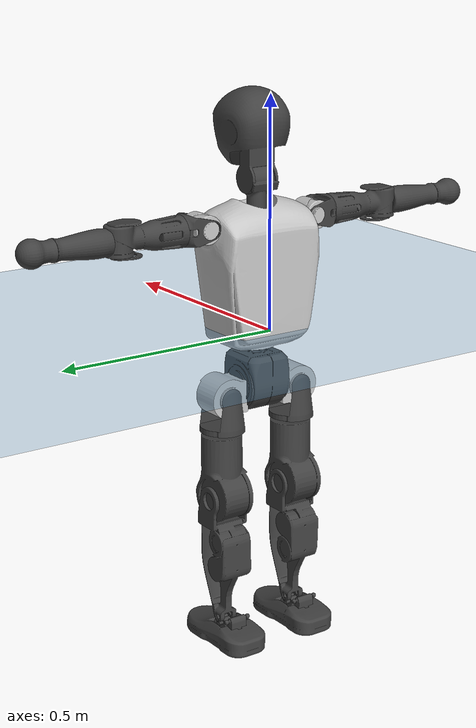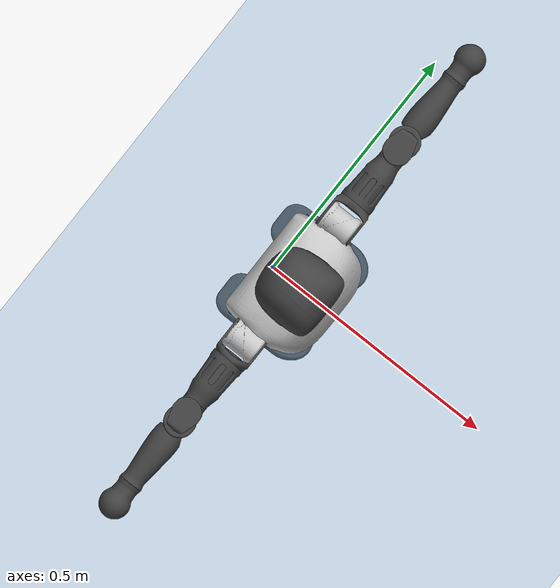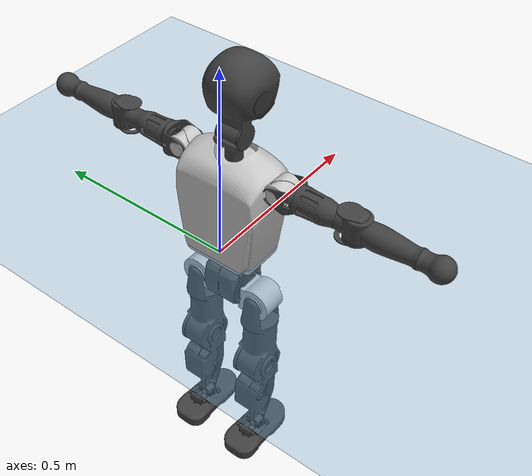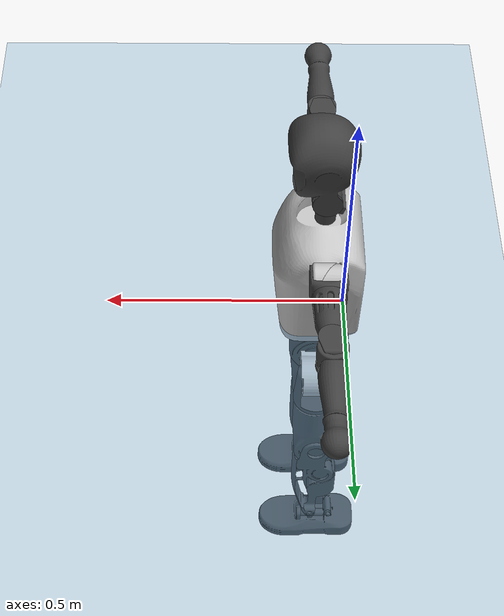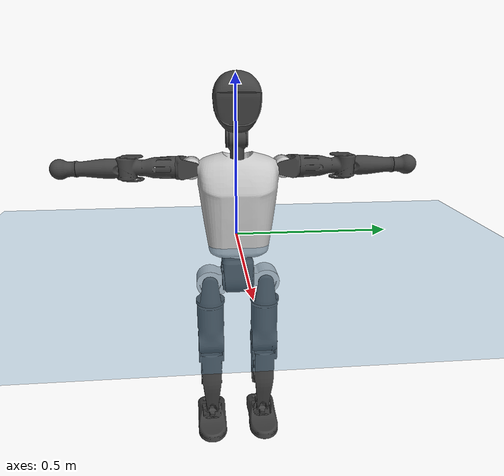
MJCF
<mujoco model="T1">
  <compiler angle="radian" assetdir="assets" balanceinertia="true" inertiafromgeom="false"/>

  <option timestep="0.005" density="1.2" viscosity="2e-05"/>

  <size nkey="1"/>

  <visual>
    <quality shadowsize="8192"/>
    <map shadowclip="0.5"/>
  </visual>

  <default>
    <default class="/">
      <joint armature="0.01" damping="0.01" frictionloss="0.1"/>
      <geom contype="0" conaffinity="0" group="1" solref="-1000 -80"/>
      <site size="0.01 0.005 0.005" group="5"/>
      <general forcelimited="true" biastype="affine" gainprm="25" biasprm="0 -25 -0.6"/>
      <default class="t1">
        <geom rgba="0.25 0.25 0.25 1"/>
        <default class="visual">
          <geom type="mesh" group="2"/>
        </default>
        <default class="collision">
          <geom group="3"/>
        </default>
        <default class="foot">
          <geom size="0.1115 0.05 0.015" type="box" condim="6" group="4" priority="1" solimp="0.015 1 0.015"/>
        </default>
        <default class="reward_collision_sphere">
          <geom group="5" rgba="1 0 0 1"/>
        </default>
      </default>
    </default>
  </default>

  <asset>
    <texture type="skybox" colorspace="auto" name="//unnamed_texture_0" builtin="gradient" rgb1="0.95 0.95 0.95" rgb2="0.95 0.95 0.95" width="100" height="600"/>
    <texture type="2d" colorspace="auto" name="texplane" builtin="checker" rgb1="0.345 0.575 0.748" rgb2="0.345 0.575 0.748" markrgb="1 1 1" width="512" height="512"/>
    <material name="MatPlane" class="/" texture="texplane" texuniform="true" texrepeat="2 2" specular="0.9"/>
    <mesh name="Trunk" class="/" file="Trunk.stl"/>
    <mesh name="H1" class="/" file="H1.stl"/>
    <mesh name="H2" class="/" file="H2.stl"/>
    <mesh name="AL1" class="/" file="AL1.stl"/>
    <mesh name="AL2" class="/" file="AL2.stl"/>
    <mesh name="AL3" class="/" file="AL3.stl"/>
    <mesh name="left_hand_link" class="/" file="left_hand_link.stl"/>
    <mesh name="AR1" class="/" file="AR1.stl"/>
    <mesh name="AR2" class="/" file="AR2.stl"/>
    <mesh name="AR3" class="/" file="AR3.stl"/>
    <mesh name="right_hand_link" class="/" file="right_hand_link.stl"/>
    <mesh name="Waist" class="/" file="Waist.stl"/>
    <mesh name="Hip_Pitch_Left" class="/" file="Hip_Pitch_Left.stl"/>
    <mesh name="Hip_Roll_Left" class="/" file="Hip_Roll_Left.stl"/>
    <mesh name="Hip_Yaw_Left" class="/" file="Hip_Yaw_Left.stl"/>
    <mesh name="Shank_Left" class="/" file="Shank_Left.stl"/>
    <mesh name="Ankle_Cross_Left" class="/" file="Ankle_Cross_Left.stl"/>
    <mesh name="left_foot_link" class="/" file="left_foot_link.stl"/>
    <mesh name="Hip_Pitch_Right" class="/" file="Hip_Pitch_Right.stl"/>
    <mesh name="Hip_Roll_Right" class="/" file="Hip_Roll_Right.stl"/>
    <mesh name="Hip_Yaw_Right" class="/" file="Hip_Yaw_Right.stl"/>
    <mesh name="Shank_Right" class="/" file="Shank_Right.stl"/>
    <mesh name="Ankle_Cross_Right" class="/" file="Ankle_Cross_Right.stl"/>
    <mesh name="right_foot_link" class="/" file="right_foot_link.stl"/>
  </asset>

  <worldbody>
    <geom name="floor" class="/" size="100 100 0.125" type="plane" group="0" material="MatPlane"/>
    <light name="toplight_shadow" class="/" pos="0 0 5" dir="0.0990148 0.0990148 -0.990148" type="directional" ambient="0.04 0.04 0.04" diffuse="0.55 0.55 0.55" specular="0.12 0.12 0.12"/>
    <light name="toplight_fill" class="/" pos="0 0 5" dir="0.0990148 0.0990148 -0.990148" type="directional" castshadow="false" ambient="0.04 0.04 0.04" diffuse="0.3 0.3 0.3" specular="0.08 0.08 0.08"/>
    <body name="trunk" childclass="t1" pos="0.000870222 -3.57242e-06 -0.000939729" quat="1 -0.000303342 -0.000309191 3.53115e-05">
      <inertial pos="0.043712 0.000168649 0.110063" quat="0.999952 0.00225202 -0.0094973 0.000859769" mass="8.56192" diaginertia="0.0307027 0.0360483 0.0720737"/>
      <joint name="//unnamed_joint_0" type="free" armature="0" damping="0" frictionloss="0"/>
      <geom name="//unnamed_geom_1" class="visual" rgba="0.76 0.76 0.76 1" mesh="Trunk"/>
      <geom name="//unnamed_geom_2" class="collision" size="0.0679714 0.0906285 0.135943" pos="0.0482603 0 0.126677" type="box"/>
      <geom name="//unnamed_geom_3" class="reward_collision_sphere" size="0.104223" pos="0.0482603 0 0.105564"/>
      <geom name="//unnamed_geom_4" class="reward_collision_sphere" size="0.0135943" pos="0.0482603 0.0730046 0"/>
      <geom name="//unnamed_geom_5" class="reward_collision_sphere" size="0.0135943" pos="0.0482603 -0.0730046 0"/>
      <geom name="//unnamed_geom_6" class="reward_collision_sphere" size="0.0135943" pos="0.0482603 0.0918999 0.190015"/>
      <geom name="//unnamed_geom_7" class="reward_collision_sphere" size="0.0135943" pos="0.0482603 -0.0918999 0.190015"/>
      <site name="imu" pos="0.00368151 -0.00314933 -0.00145625" size="0.00906285"/>
      <camera name="track" pos="0 -1.71776 0" quat="0.707107 0.707107 0 0" mode="trackcom"/>
      <camera name="ego_camera" pos="0.0981292 0 0.443369" quat="-0.5 -0.5 0.5 0.5"/>
      <body name="H1" pos="0.0496661 -0.000795613 0.25573" quat="1 -0.00023884 -0.000283755 0.000341638">
        <inertial pos="-0.0020205 -0.00163307 0.0597618" quat="0.76441 -0.00559836 0.00198391 0.644703" mass="0.331197" diaginertia="8.20064e-05 0.000104047 0.000199154"/>
        <joint name="AAHead_yaw" pos="0 0 0" axis="-0.00330504 -0.000198636 0.999995" stiffness="0.00037384" range="-1.55649 1.58106" armature="0.00866331" damping="0.00765182" frictionloss="0.0926965"/>
        <geom name="//unnamed_geom_8" class="visual" mesh="H1"/>
        <body name="H2" pos="-0.000461159 -0.000681115 0.0647373" quat="1 0.000186834 -8.39442e-05 -8.14454e-05">
          <inertial pos="0.00560261 -0.00058849 0.103916" quat="0.988398 0.10741 -0.0733386 -0.0784445" mass="0.470441" diaginertia="0.000685093 0.000884033 0.0022671"/>
          <joint name="Head_pitch" pos="0 0 0" axis="3.16581e-05 -1 0.00010945" range="-1.23166 0.33153" armature="0.0092631" damping="0.0047897" frictionloss="0.0940664"/>
          <geom name="//unnamed_geom_9" class="visual" mesh="H2"/>
          <geom name="//unnamed_geom_10" class="collision" size="0.0725028" pos="0.00804338 0 0.11612"/>
          <geom name="//unnamed_geom_11" class="reward_collision_sphere" size="0.0815657" pos="0.0160868 0 0.105564"/>
        </body>
      </body>
      <body name="AL1" pos="0.0475461 0.0926146 0.231662" quat="1 2.86104e-05 0.00045279 -2.25895e-05">
        <inertial pos="-0.00019695 0.0383417 -0.00129798" quat="0.504604 0.491987 -0.504797 0.498501" mass="0.402773" diaginertia="0.000472032 0.000615983 0.000389599"/>
        <joint name="Left_Shoulder_Pitch" pos="0 0 0" axis="-0.00422399 0.99999 0.0013978" range="-3.30824 1.23638" armature="0.00908132" damping="0.00475542" frictionloss="0.0929072"/>
        <geom name="//unnamed_geom_12" class="visual" rgba="0.76 0.76 0.76 1" mesh="AL1"/>
        <body name="AL2" pos="0.00016029 0.0411794 0.000137657" quat="1 -0.0003549 -0.000299593 -0.000647996">
          <inertial pos="0.0032274 0.0309326 -0.000276805" quat="0.488384 0.511444 -0.487721 0.511892" mass="0.119239" diaginertia="0.000135529 0.000163073 0.000231559"/>
          <joint name="Left_Shoulder_Roll" pos="0 0 0" axis="-0.999991 -0.00106055 0.00413925" range="-1.55737 1.74326" armature="0.00946762" damping="0.000149289" frictionloss="0.0937841"/>
          <geom name="//unnamed_geom_13" class="visual" mesh="AL2"/>
          <body name="AL3" pos="0.000521345 0.0538606 -0.000431422" quat="1 -0.000164053 -2.80876e-05 -0.000335261">
            <inertial pos="-0.000270648 0.07306 0.000522661" quat="0.708772 0.705431 -0.00229183 -0.00192836" mass="0.784149" diaginertia="0.00437015 0.0060794 0.000809498"/>
            <joint name="Left_Elbow_Pitch" pos="0 0 0" axis="-0.000182049 -1 -0.000626828" range="-2.24144 2.24329" armature="0.00947351" damping="0.00128194" frictionloss="0.0895257"/>
            <geom name="//unnamed_geom_14" class="visual" mesh="AL3"/>
            <geom name="//unnamed_geom_15" class="collision" size="0.0271886 0.0679714" pos="0 0.0429439 0" quat="0.707105 0.707108 0 0" type="cylinder"/>
            <geom name="//unnamed_geom_16" class="reward_collision_sphere" size="0.0326263"/>
            <body name="left_hand_link" pos="-0.000390201 0.126585 -0.000269355" quat="1 0.00011827 0.000190554 0.000257624">
              <inertial pos="5.6309e-07 0.0939352 0.000396392" quat="0.706498 0.707714 0.0010067 0.000890492" mass="0.24072" diaginertia="0.00271329 0.00377488 0.000282408"/>
              <joint name="Left_Elbow_Yaw" pos="0 0 0" axis="0.000521875 0.000767745 1" range="-2.44185 -0.00407919" armature="0.00923759" damping="0.0105202" frictionloss="0.0866663"/>
              <geom name="//unnamed_geom_17" class="visual" mesh="left_hand_link"/>
              <geom name="//unnamed_geom_18" class="collision" size="0.0271886 0.0793" pos="0 0.111654 0" quat="0.707105 0.707108 0 0" type="cylinder"/>
              <geom name="//unnamed_geom_19" class="reward_collision_sphere" size="0.0453143"/>
              <geom name="//unnamed_geom_20" class="reward_collision_sphere" size="0.03172" pos="0 0.0944766 0"/>
              <geom name="//unnamed_geom_21" class="reward_collision_sphere" size="0.03172" pos="0 0.184659 0"/>
            </body>
          </body>
        </body>
      </body>
      <body name="AR1" pos="0.0454155 -0.0915854 0.231024" quat="1 0.000193453 0.000198792 -2.82879e-06">
        <inertial pos="-0.00143207 -0.0396136 0.000754849" quat="0.504728 0.496123 -0.504655 0.494404" mass="0.394078" diaginertia="0.000462327 0.000602296 0.00038373"/>
        <joint name="Right_Shoulder_Pitch" pos="0 0 0" axis="-5.13282e-06 -1 -3.50711e-05" range="-1.22149 3.31127" armature="0.00946794" damping="0.00366363" frictionloss="0.0917787"/>
        <geom name="//unnamed_geom_22" class="visual" rgba="0.76 0.76 0.76 1" mesh="AR1"/>
        <body name="AR2" pos="-0.0011119 -0.0394647 0.000510241" quat="1 -2.05735e-05 1.56877e-05 7.10796e-06">
          <inertial pos="0.00255339 -0.0325325 -0.000582301" quat="0.512215 0.490229 -0.512727 0.484172" mass="0.117358" diaginertia="0.000135576 0.000158862 0.000229833"/>
          <joint name="Right_Shoulder_Roll" pos="0 0 0" axis="-0.999983 -0.0059055 -0.00019221" stiffness="0.00308774" range="-1.73455 1.58378" armature="0.00904272" damping="0.00305348" frictionloss="0.0899237"/>
          <geom name="//unnamed_geom_23" class="visual" mesh="AR2"/>
          <body name="AR3" pos="-0.000821051 -0.0525698 0.000979356" quat="1 -0.000233491 0.00010362 -0.000114009">
            <inertial pos="-0.00115569 -0.0724413 -0.000439127" quat="0.707412 0.7068 -0.000760535 0.000502868" mass="0.753699" diaginertia="0.00428682 0.0059015 0.000798278"/>
            <joint name="Right_Elbow_Pitch" pos="0 0 0" axis="0.00383235 0.999991 0.00160015" range="-2.27226 2.27327" armature="0.00947427" damping="0.00800515" frictionloss="0.0871083"/>
            <geom name="//unnamed_geom_24" class="visual" mesh="AR3"/>
            <geom name="//unnamed_geom_25" class="collision" size="0.0271886 0.0679714" pos="0 -0.0429439 0" quat="0.707105 0.707108 0 0" type="cylinder"/>
            <geom name="//unnamed_geom_26" class="reward_collision_sphere" size="0.0326263"/>
            <body name="right_hand_link" pos="-0.000640166 -0.125875 -0.000423187" quat="1 -0.000180247 3.10423e-05 0.000127436">
              <inertial pos="-0.000694703 -0.0939968 -0.000442853" quat="0.702896 0.711282 -0.00108557 -0.00387377" mass="0.248538" diaginertia="0.00271669 0.00380191 0.000278456"/>
              <joint name="Right_Elbow_Yaw" pos="0 0 0" axis="-0.00419261 0.00261455 0.999988" range="-0.0172046 2.46413" armature="0.00883044" damping="0.0105824" frictionloss="0.0895357"/>
              <geom name="//unnamed_geom_27" class="visual" mesh="right_hand_link"/>
              <geom name="//unnamed_geom_28" class="collision" size="0.0271886 0.0793" pos="0 -0.111654 0" quat="0.707105 0.707108 0 0" type="cylinder"/>
              <geom name="//unnamed_geom_29" class="reward_collision_sphere" size="0.0453143"/>
              <geom name="//unnamed_geom_30" class="reward_collision_sphere" size="0.03172" pos="0 -0.0944766 0"/>
              <geom name="//unnamed_geom_31" class="reward_collision_sphere" size="0.03172" pos="0 -0.184659 0"/>
            </body>
          </body>
        </body>
      </body>
      <body name="Waist" pos="0.0495658 -0.0011023 -0.121208" quat="1 -0.00043036 -0.000218627 5.00332e-05">
        <inertial pos="0.0015451 -0.000954671 0.00683224" quat="0.983969 0.00298923 -0.178314 -0.000791417" mass="1.93734" diaginertia="0.00180437 0.00246568 0.00619434"/>
        <joint name="Waist" pos="0 0 0" axis="0.00135309 0.00219822 0.999997" range="-1.56796 1.56869" armature="0.00870697" damping="0.0146386" frictionloss="0.0893867"/>
        <geom name="//unnamed_geom_32" class="visual" mesh="Waist"/>
        <body name="Hip_Pitch_Left" pos="-0.000109082 0.0915832 0.00104073" quat="1 -1.29904e-06 -0.000110569 3.86405e-05">
          <inertial pos="0.00209939 -0.00745582 -0.0200554" quat="0.974235 0.224933 0.0150031 0.00672862" mass="0.756054" diaginertia="0.000608067 0.000682537 0.00162919"/>
          <joint name="Left_Hip_Pitch" pos="0 0 0" axis="-0.00215648 0.999997 0.00151129" stiffness="0.00140997" range="-1.80545 1.58622" armature="0.00894604" damping="0.00303429" frictionloss="0.0885902"/>
          <geom name="//unnamed_geom_33" class="visual" rgba="0.76 0.76 0.76 1" mesh="Hip_Pitch_Left"/>
          <body name="Hip_Roll_Left" pos="0.000520026 -0.000386228 -0.0206624" quat="1 -0.000196109 -0.000103599 -0.000300075">
            <inertial pos="0.00179902 0.000182141 -0.0565335" quat="0.708118 -0.00765529 -0.00593452 0.706028" mass="0.278913" diaginertia="0.000583441 0.000694671 0.000660116"/>
            <joint name="Left_Hip_Roll" pos="0 0 0" axis="-0.999986 0.00424386 -0.00312514" stiffness="0.00116797" range="-1.56299 0.183692" armature="0.00903368" damping="0.0109097" frictionloss="0.0926873"/>
            <geom name="//unnamed_geom_34" class="visual" mesh="Hip_Roll_Left"/>
            <geom name="//unnamed_geom_35" class="reward_collision_sphere" size="0.0498457"/>
            <body name="Hip_Yaw_Left" pos="0.00181427 -0.000390839 -0.0871332" quat="1 -0.000146838 -0.000101459 3.73059e-05">
              <inertial pos="-0.00551668 -0.000539139 -0.0948249" quat="0.693356 -0.0312955 -0.0318853 0.719209" mass="1.63268" diaginertia="0.00878141 0.0120414 0.00346962"/>
              <joint name="Left_Hip_Yaw" pos="0 0 0" axis="0.0012551 2.79575e-05 -0.999999" stiffness="0.00146811" range="-1.02508 1.0089" armature="0.0090092" damping="0.00638868" frictionloss="0.0895356"/>
              <geom name="//unnamed_geom_36" class="visual" mesh="Hip_Yaw_Left"/>
              <geom name="//unnamed_geom_37" class="collision" size="0.0453143 0.0725028" type="cylinder"/>
              <body name="Shank_Left" pos="-0.0110741 0.00079278 -0.142424" quat="1 -0.000205647 -0.000169222 -0.000154042">
                <inertial pos="-0.00466342 -0.00067218 -0.131416" quat="0.997424 0.00189251 -0.0259509 0.0668428" mass="1.28889" diaginertia="0.0119132 0.0161536 0.00248271"/>
                <joint name="Left_Knee_Pitch" pos="0 0 0" axis="-0.000352768 1 -0.000620019" range="-0.0206416 2.33959" armature="0.0088176" damping="0.00437834" frictionloss="0.0986097"/>
                <geom name="//unnamed_geom_38" class="visual" mesh="Shank_Left"/>
                <geom name="//unnamed_geom_39" class="collision" size="0.0453143 0.0679714" pos="0 0 -0.126677" type="cylinder"/>
                <geom name="//unnamed_geom_40" class="reward_collision_sphere" size="0.0589085"/>
                <body name="Ankle_Cross_Left" pos="-0.000757968 -0.000208517 -0.295289" quat="1 0.000105395 -9.08695e-05 9.69197e-06">
                  <inertial pos="-0.00269393 0.000162747 -0.00932789" quat="0.442197 0.55268 0.549923 0.443387" mass="0.0535747" diaginertia="9.5507e-06 1.15422e-05 1.44712e-05"/>
                  <joint name="Left_Ankle_Pitch" pos="0 0 0" axis="0.00462616 0.999974 0.00546735" range="-0.854619 0.349636" armature="0.0090519" damping="0.00909394" frictionloss="0.0949794"/>
                  <geom name="//unnamed_geom_41" class="visual" mesh="Ankle_Cross_Left"/>
                  <body name="left_foot_link" pos="-0.000897293 -0.00092148 -0.0124542" quat="1 -0.000452282 0.000321817 0.000481229">
                    <inertial pos="0.000660737 -0.000198199 -0.00878263" quat="-0.000117033 0.620576 -0.000319779 0.784146" mass="0.502408" diaginertia="0.000899855 0.00110099 0.00283851"/>
                    <joint name="Left_Ankle_Roll" pos="0 0 0" axis="-1 0.000227773 -0.000203083" range="-0.443463 0.458555" armature="0.00904881" damping="0.00789976" frictionloss="0.0872789"/>
                    <geom name="//unnamed_geom_42" class="visual" mesh="left_foot_link"/>
                    <geom name="left_foot" class="foot" size="0.103087 0.0452999 0.0130518" pos="0.00804338 0 -0.0158346"/>
                    <geom name="//unnamed_geom_44" class="reward_collision_sphere" size="0.0471268" pos="0.00804338 0 -0.0158346"/>
                    <geom name="//unnamed_geom_45" class="reward_collision_sphere" size="0.0271886" pos="0.0764121 -0.0197542 -0.0158346"/>
                    <geom name="//unnamed_geom_46" class="reward_collision_sphere" size="0.0271886" pos="-0.0563036 -0.0197542 -0.0158346"/>
                    <site name="left_foot" class="foot" pos="0.00804338 0 -0.0158346" size="0.00906285"/>
                  </body>
                </body>
              </body>
            </body>
          </body>
        </body>
        <body name="Hip_Pitch_Right" pos="-0.000423337 -0.090327 -0.000112733" quat="1 -1.23504e-05 -8.81458e-06 7.71449e-06">
          <inertial pos="0.00132597 0.00685375 -0.0187227" quat="0.973504 -0.228157 0.0147629 -0.00407833" mass="0.75941" diaginertia="0.00060657 0.000679412 0.0016161"/>
          <joint name="Right_Hip_Pitch" pos="0 0 0" axis="-2.80615e-06 -0.999999 0.00120866" range="-1.57222 1.79296" armature="0.00901143" damping="0.00718423" frictionloss="0.0888763"/>
          <geom name="//unnamed_geom_47" class="visual" rgba="0.76 0.76 0.76 1" mesh="Hip_Pitch_Right"/>
          <body name="Hip_Roll_Right" pos="0.000188241 -0.000288067 -0.0201466" quat="1 1.76296e-05 0.00011571 0.000173086">
            <inertial pos="0.000858892 0.000795322 -0.0565919" quat="0.707041 -0.00776421 -0.0015608 0.707128" mass="0.289222" diaginertia="0.000591281 0.000711562 0.000684459"/>
            <joint name="Right_Hip_Roll" pos="0 0 0" axis="-1 -0.000240514 0.000880388" range="-0.185696 1.56337" armature="0.00860197" damping="0.00858968" frictionloss="0.0949117"/>
            <geom name="//unnamed_geom_48" class="visual" mesh="Hip_Roll_Right"/>
            <geom name="//unnamed_geom_49" class="reward_collision_sphere" size="0.0498457"/>
            <body name="Hip_Yaw_Right" pos="0.000775727 -0.00028662 -0.0870175" quat="1 0.000116966 4.94963e-05 2.42843e-05">
              <inertial pos="-0.00568829 -0.000878046 -0.0931381" quat="0.713764 -0.0327887 -0.0325257 0.698862" mass="1.63834" diaginertia="0.00875432 0.0119382 0.00341473"/>
              <joint name="Right_Hip_Yaw" pos="0 0 0" axis="0.00232076 0.00345802 -0.999991" stiffness="0.00310573" range="-1.01253 1.00693" armature="0.00846411" damping="0.0100891" frictionloss="0.0888969"/>
              <geom name="//unnamed_geom_50" class="visual" mesh="Hip_Yaw_Right"/>
              <geom name="//unnamed_geom_51" class="collision" size="0.0453143 0.0725028" type="cylinder"/>
              <body name="Shank_Right" pos="-0.00993523 -0.000471642 -0.140764" quat="1 -8.52181e-05 -0.000130779 6.22081e-05">
                <inertial pos="-0.00378484 0.00151121 -0.130058" quat="0.999307 -0.00154094 -0.0228227 -0.0293498" mass="1.35379" diaginertia="0.0122954 0.0167597 0.00264921"/>
                <joint name="Right_Knee_Pitch" pos="0 0 0" axis="0.000858513 -1 0.000155195" range="-2.34202 0.000265876" armature="0.00901036" damping="0.0104217" frictionloss="0.0863017"/>
                <geom name="//unnamed_geom_52" class="visual" mesh="Shank_Right"/>
                <geom name="//unnamed_geom_53" class="collision" size="0.0453143 0.0679714" pos="0 0 -0.126677" type="cylinder"/>
                <geom name="//unnamed_geom_54" class="reward_collision_sphere" size="0.0589085"/>
                <body name="Ankle_Cross_Right" pos="-0.000458387 -0.00129698 -0.295839" quat="1 7.07666e-06 5.36667e-06 6.82335e-06">
                  <inertial pos="-0.00342946 -0.000541986 -0.00864452" quat="0.442132 0.554826 0.550054 0.440599" mass="0.054471" diaginertia="9.72703e-06 1.20103e-05 1.50318e-05"/>
                  <joint name="Right_Ankle_Pitch" pos="0 0 0" axis="-0.00484341 -0.99996 -0.00750009" stiffness="0.00105076" range="-0.336944 0.864211" armature="0.00917297" damping="0.00798297" frictionloss="0.0887825"/>
                  <geom name="//unnamed_geom_55" class="visual" mesh="Ankle_Cross_Right"/>
                  <body name="right_foot_link" pos="-0.000107644 -0.00104362 -0.0129197" quat="1 -0.000107887 1.08167e-05 -2.98557e-05">
                    <inertial pos="0.00123549 -4.57254e-05 -0.0102898" quat="-0.000394955 0.621269 0.000551837 0.783597" mass="0.511736" diaginertia="0.000927412 0.00111582 0.00290413"/>
                    <joint name="Right_Ankle_Roll" pos="0 0 0" axis="-0.999995 -0.0025399 0.00170292" range="-0.437478 0.454223" armature="0.0087685" damping="0.00726576" frictionloss="0.0862656"/>
                    <geom name="//unnamed_geom_56" class="visual" mesh="right_foot_link"/>
                    <geom name="right_foot" class="foot" size="0.0989125 0.0448876 0.01405" pos="0.00804338 0 -0.0158346"/>
                    <geom name="//unnamed_geom_58" class="reward_collision_sphere" size="0.0362514"/>
                    <geom name="//unnamed_geom_59" class="reward_collision_sphere" size="0.0271886" pos="0.00804338 0 -0.0158346"/>
                    <geom name="//unnamed_geom_60" class="reward_collision_sphere" size="0.0271886" pos="0.0764121 0.0197542 -0.0158346"/>
                    <geom name="//unnamed_geom_61" class="reward_collision_sphere" size="0.0271886" pos="-0.0563036 0.0197542 -0.0158346"/>
                    <site name="right_foot" class="foot" pos="0.00804338 0 -0.0158346" size="0.00906285"/>
                  </body>
                </body>
              </body>
            </body>
          </body>
        </body>
      </body>
    </body>
  </worldbody>

  <contact>
    <pair class="/" geom1="floor" geom2="left_foot" name="//unnamed_contact_0"/>
    <pair class="/" geom1="floor" geom2="right_foot" name="//unnamed_contact_1"/>
  </contact>

  <actuator>
    <general name="AAHead_yaw" class="/" joint="AAHead_yaw" forcerange="-6.22342 6.22342" gainprm="22.8071" biasprm="0 -22.8071 -0.536742"/>
    <general name="Head_pitch" class="/" joint="Head_pitch" forcerange="-6.16408 6.16408" gainprm="22.8071" biasprm="0 -22.8071 -0.536742"/>
    <general name="Left_Shoulder_Pitch" class="/" joint="Left_Shoulder_Pitch" forcerange="-16.1236 16.1236" gainprm="22.8071" biasprm="0 -22.8071 -0.536742"/>
    <general name="Left_Shoulder_Roll" class="/" joint="Left_Shoulder_Roll" forcerange="-15.8277 15.8277" gainprm="22.8071" biasprm="0 -22.8071 -0.536742"/>
    <general name="Left_Elbow_Pitch" class="/" joint="Left_Elbow_Pitch" forcerange="-16.3223 16.3223" gainprm="22.8071" biasprm="0 -22.8071 -0.536742"/>
    <general name="Left_Elbow_Yaw" class="/" joint="Left_Elbow_Yaw" forcerange="-17.3182 17.3182" gainprm="22.8071" biasprm="0 -22.8071 -0.536742"/>
    <general name="Right_Shoulder_Pitch" class="/" joint="Right_Shoulder_Pitch" forcerange="-16.4452 16.4452" gainprm="22.8071" biasprm="0 -22.8071 -0.536742"/>
    <general name="Right_Shoulder_Roll" class="/" joint="Right_Shoulder_Roll" forcerange="-16.2507 16.2507" gainprm="22.8071" biasprm="0 -22.8071 -0.536742"/>
    <general name="Right_Elbow_Pitch" class="/" joint="Right_Elbow_Pitch" forcerange="-15.8937 15.8937" gainprm="22.8071" biasprm="0 -22.8071 -0.536742"/>
    <general name="Right_Elbow_Yaw" class="/" joint="Right_Elbow_Yaw" forcerange="-16.3356 16.3356" gainprm="22.8071" biasprm="0 -22.8071 -0.536742"/>
    <general name="Waist" class="/" joint="Waist" forcerange="-27.2707 27.2707" gainprm="22.8071" biasprm="0 -22.8071 -0.536742"/>
    <general name="Left_Hip_Pitch" class="/" joint="Left_Hip_Pitch" forcerange="-39.4731 39.4731" gainprm="22.8071" biasprm="0 -22.8071 -0.536742"/>
    <general name="Left_Hip_Roll" class="/" joint="Left_Hip_Roll" forcerange="-26.6697 26.6697" gainprm="22.8071" biasprm="0 -22.8071 -0.536742"/>
    <general name="Left_Hip_Yaw" class="/" joint="Left_Hip_Yaw" forcerange="-26.7011 26.7011" gainprm="22.8071" biasprm="0 -22.8071 -0.536742"/>
    <general name="Left_Knee_Pitch" class="/" joint="Left_Knee_Pitch" forcerange="-54.2821 54.2821" gainprm="22.8071" biasprm="0 -22.8071 -0.536742"/>
    <general name="Left_Ankle_Pitch" class="/" joint="Left_Ankle_Pitch" forcerange="-18.0088 18.0088" gainprm="22.8071" biasprm="0 -22.8071 -0.536742"/>
    <general name="Left_Ankle_Roll" class="/" joint="Left_Ankle_Roll" forcerange="-13.6284 13.6284" gainprm="22.8071" biasprm="0 -22.8071 -0.536742"/>
    <general name="Right_Hip_Pitch" class="/" joint="Right_Hip_Pitch" forcerange="-40.9295 40.9295" gainprm="22.8071" biasprm="0 -22.8071 -0.536742"/>
    <general name="Right_Hip_Roll" class="/" joint="Right_Hip_Roll" forcerange="-27.1164 27.1164" gainprm="22.8071" biasprm="0 -22.8071 -0.536742"/>
    <general name="Right_Hip_Yaw" class="/" joint="Right_Hip_Yaw" forcerange="-26.9762 26.9762" gainprm="22.8071" biasprm="0 -22.8071 -0.536742"/>
    <general name="Right_Knee_Pitch" class="/" joint="Right_Knee_Pitch" forcerange="-56.237 56.237" gainprm="22.8071" biasprm="0 -22.8071 -0.536742"/>
    <general name="Right_Ankle_Pitch" class="/" joint="Right_Ankle_Pitch" forcerange="-18.2594 18.2594" gainprm="22.8071" biasprm="0 -22.8071 -0.536742"/>
    <general name="Right_Ankle_Roll" class="/" joint="Right_Ankle_Roll" forcerange="-13.1773 13.1773" gainprm="22.8071" biasprm="0 -22.8071 -0.536742"/>
  </actuator>

  <sensor>
    <gyro site="imu" name="imu_angular_velocity"/>
    <velocimeter site="imu" name="imu_linear_velocity"/>
    <framelinvel objtype="site" objname="left_foot" name="left_foot_global_linear_velocity"/>
    <framelinvel objtype="site" objname="right_foot" name="right_foot_global_linear_velocity"/>
  </sensor>

  <keyframe>
    <key name="home" qpos="0 0 0.6385 1 0 0 0 0 0 0 1.4 0 -0.4 0 -1.4 0 0.4 0 -0.4 0 0 0.8 -0.4 0 0.4 0 0 -0.8 0.4 0"/>
  </keyframe>
</mujoco>
